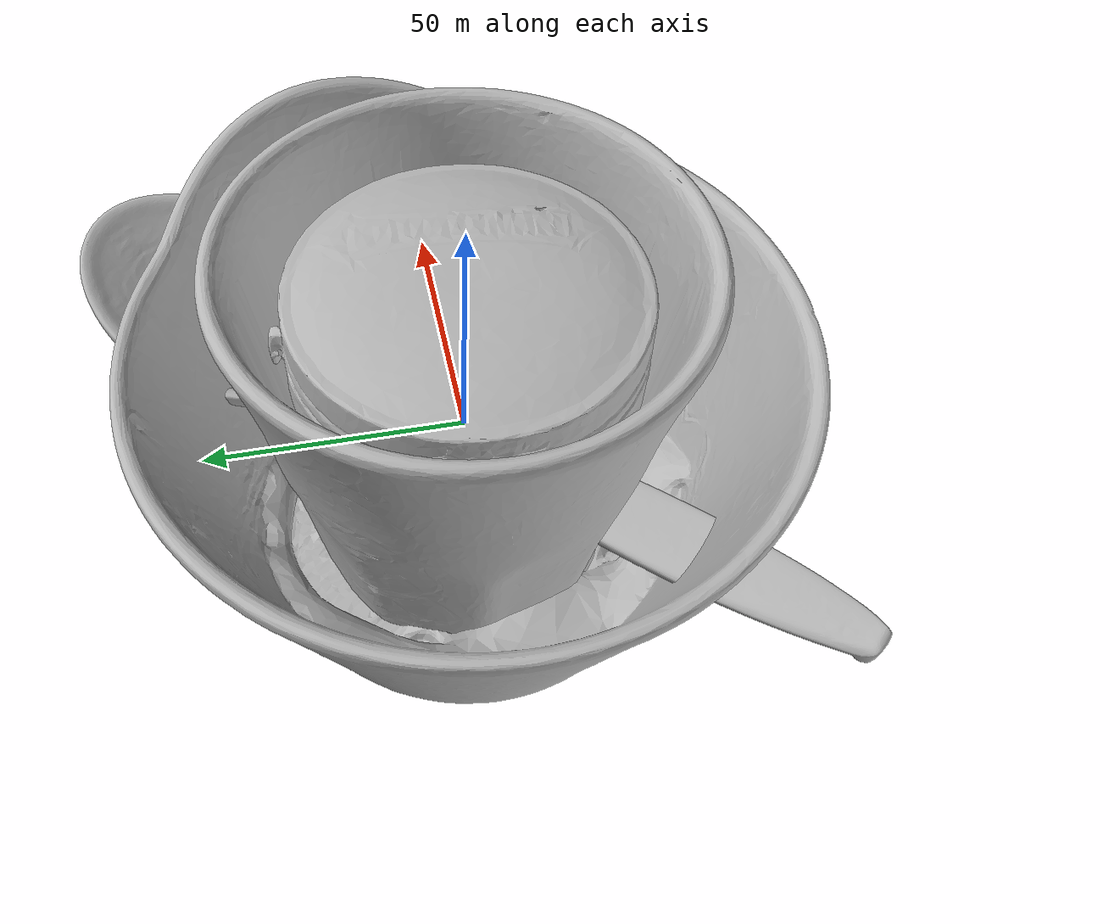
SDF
<sdf version="1.4">
 <world name="default">
  <light name="light1" type="point">
   <pose>0 0 1 0 0 0</pose>
   <diffuse>3 3 3 1</diffuse>
   <specular>3 3 3 1</specular>
  </light>
  <light name="light2" type="point">
   <pose>0 0.5 2 0 0 0</pose>
   <diffuse>1 1 1 1</diffuse>
   <specular>1 1 1 1</specular>
  </light>
  <light name="light3" type="point">
   <pose>0 0.5 2 0 0 0</pose>
   <diffuse>3 3 3 1</diffuse>
   <specular>3 3 3 1</specular>
  </light>
  <scene><ambient>0.7 0.7 0.7</ambient></scene>
  <model name="bottle1">
   <link name="link_bottle1">
    <collision name="default">
     <geometry>
      <mesh><uri>model://green_arrow/collision_meshes/collision.obj</uri><scale>1.0 1.0 1.0</scale></mesh>
     </geometry>
     <surface>
      <friction><ode><mu>0.5</mu><mu2>0.5</mu2></ode></friction>
      <contact><ode><max_vel>0</max_vel><min_depth>0.0001</min_depth><kp>1e8</kp></ode></contact>
     </surface>
    </collision>
    <visual name="default">
     <geometry>
      <mesh><uri>model://green_arrow/visual_meshes/visual.dae</uri><scale>1.0 1.0 1.0</scale></mesh>
     </geometry>
    </visual>
    <inertial>
     <mass>0.2764224410057068</mass>
     <pose>0.0005358477937988937 -0.0008270691032521427 0.002210969105362892 -0.06332196008274972 0.012988210902137025 0.674142157837799</pose>
     <inertia>
      <ixx>0.00020051825</ixx>
      <iyy>0.00020021446</iyy>
      <izz>0.00012947427</izz>
      <ixy>0</ixy>
      <ixz>0</ixz>
      <iyz>0</iyz>
     </inertia>
    </inertial>
   </link>
   <pose>0.18544910848140717 -0.35858434438705444 0.03896166384220123 0.04528463364693023 0.024256758703585752 0.8071424185325202</pose>
  </model>
  <model name="bottle2">
   <link name="link_bottle2">
    <collision name="default">
     <geometry>
      <mesh><uri>model://pure_zhen/collision_meshes/collision.obj</uri><scale>1.0 1.0 1.0</scale></mesh>
     </geometry>
     <surface>
      <friction><ode><mu>0.5</mu><mu2>0.5</mu2></ode></friction>
      <contact><ode><max_vel>0</max_vel><min_depth>0.0001</min_depth><kp>1e8</kp></ode></contact>
     </surface>
    </collision>
    <visual name="default">
     <geometry>
      <mesh><uri>model://pure_zhen/visual_meshes/visual.dae</uri><scale>1.0 1.0 1.0</scale></mesh>
     </geometry>
    </visual>
    <inertial>
     <mass>0.2372884750366211</mass>
     <pose>-8.582299778936431e-05 0.0002452346670906991 -0.0015797418309375644 -0.027641670524606855 0.005623077019143168 0.30585846122319743</pose>
     <inertia>
      <ixx>0.0007112664</ixx>
      <iyy>0.00071145216</iyy>
      <izz>7.51383e-05</izz>
      <ixy>0</ixy>
      <ixz>0</ixz>
      <iyz>0</iyz>
     </inertia>
    </inertial>
   </link>
   <pose>0.1915309876203537 -0.2048015147447586 0.09194844216108322 0.019489087381227174 -0.01608904268505911 -0.9108509703567038</pose>
  </model>
  <model name="silverware1">
   <link name="link_silverware1">
    <collision name="default">
     <geometry>
      <mesh><uri>model://doraemon_spoon/collision_meshes/collision.obj</uri><scale>1.0 1.0 1.0</scale></mesh>
     </geometry>
     <surface>
      <friction><ode><mu>0.5</mu><mu2>0.5</mu2></ode></friction>
      <contact><ode><max_vel>0</max_vel><min_depth>0.0001</min_depth><kp>1e8</kp></ode></contact>
     </surface>
    </collision>
    <visual name="default">
     <geometry>
      <mesh><uri>model://doraemon_spoon/visual_meshes/visual.dae</uri><scale>1.0 1.0 1.0</scale></mesh>
     </geometry>
    </visual>
    <inertial>
     <mass>0.020818473771214485</mass>
     <pose>-0.022165074944496155 -0.0006374582881107926 -0.0033325462136417627 -0.009147017253597407 0.0738041759980984 -0.014123826591698564</pose>
     <inertia>
      <ixx>1.6307007e-06</ixx>
      <iyy>4.631433e-05</iyy>
      <izz>4.7101734e-05</izz>
      <ixy>0</ixy>
      <ixz>0</ixz>
      <iyz>0</iyz>
     </inertia>
    </inertial>
   </link>
   <pose>0.16831456124782562 -0.13877597451210022 0.014739260077476501 0.278827916478983 -0.01033212681306067 -2.2815672004330394</pose>
  </model>
  <model name="stationery1">
   <link name="link_stationery1">
    <collision name="default">
     <geometry>
      <mesh><uri>model://correction_fuid/collision_meshes/collision.obj</uri><scale>1.0 1.0 1.0</scale></mesh>
     </geometry>
     <surface>
      <friction><ode><mu>0.5</mu><mu2>0.5</mu2></ode></friction>
      <contact><ode><max_vel>0</max_vel><min_depth>0.0001</min_depth><kp>1e8</kp></ode></contact>
     </surface>
    </collision>
    <visual name="default">
     <geometry>
      <mesh><uri>model://correction_fuid/visual_meshes/visual.dae</uri><scale>1.0 1.0 1.0</scale></mesh>
     </geometry>
    </visual>
    <inertial>
     <mass>0.03337494283914566</mass>
     <pose>-0.00012557735317386687 -0.0009722886024974287 -0.001618212671019137 -0.010846603423614418 0.019488389217657873 -0.01599245375892703</pose>
     <inertia>
      <ixx>3.2324202e-05</ixx>
      <iyy>1.9563013e-06</iyy>
      <izz>3.3165503e-05</izz>
      <ixy>0</ixy>
      <ixz>0</ixz>
      <iyz>0</iyz>
     </inertia>
    </inertial>
   </link>
   <pose>0.06968817114830017 -0.19002491235733032 0.009632829576730728 -0.0017271966801643078 -0.056166981115242216 -0.13920220767438463</pose>
  </model>
  <model name="bowl1">
   <link name="link_bowl1">
    <collision name="default">
     <geometry>
      <mesh><uri>model://hello_kitty_bowl/collision_meshes/collision.obj</uri><scale>1.0 1.0 1.0</scale></mesh>
     </geometry>
     <surface>
      <friction><ode><mu>0.5</mu><mu2>0.5</mu2></ode></friction>
      <contact><ode><max_vel>0</max_vel><min_depth>0.0001</min_depth><kp>1e8</kp></ode></contact>
     </surface>
    </collision>
    <visual name="default">
     <geometry>
      <mesh><uri>model://hello_kitty_bowl/visual_meshes/visual.dae</uri><scale>1.0 1.0 1.0</scale></mesh>
     </geometry>
    </visual>
    <inertial>
     <mass>0.11590971797704697</mass>
     <pose>-0.0015402117278426886 0.0004577837826218456 -0.0080512510612607 0.004152729053700843 -0.12227221811834889 0.04345084117661168</pose>
     <inertia>
      <ixx>0.00017210246</ixx>
      <iyy>0.00018182951</iyy>
      <izz>0.00025734986</izz>
      <ixy>0</ixy>
      <ixz>0</ixz>
      <iyz>0</iyz>
     </inertia>
    </inertial>
   </link>
   <pose>0.17642800509929657 0.18526622653007507 0.037413522601127625 0.00010290712446007805 8.169470331148141e-05 0.24867480739562955</pose>
  </model>
  <model name="cup1">
   <link name="link_cup1">
    <collision name="default">
     <geometry>
      <mesh><uri>model://hello_kitty_cup/collision_meshes/collision.obj</uri><scale>1.0 1.0 1.0</scale></mesh>
     </geometry>
     <surface>
      <friction><ode><mu>0.5</mu><mu2>0.5</mu2></ode></friction>
      <contact><ode><max_vel>0</max_vel><min_depth>0.0001</min_depth><kp>1e8</kp></ode></contact>
     </surface>
    </collision>
    <visual name="default">
     <geometry>
      <mesh><uri>model://hello_kitty_cup/visual_meshes/visual.dae</uri><scale>1.0 1.0 1.0</scale></mesh>
     </geometry>
    </visual>
    <inertial>
     <mass>0.06483803689479828</mass>
     <pose>0.00027251249412074685 0.0002795030304696411 0.003044978016987443 0.05779149237921037 0.007964744961503711 -0.020451485374324563</pose>
     <inertia>
      <ixx>8.928983e-05</ixx>
      <iyy>9.0285175e-05</iyy>
      <izz>7.52867e-05</izz>
      <ixy>0</ixy>
      <ixz>0</ixz>
      <iyz>0</iyz>
     </inertia>
    </inertial>
   </link>
   <pose>-0.019949711859226227 0.059375159442424774 0.04633193463087082 -0.0010108141082348493 0.00193267710121132 -0.1405214679389603</pose>
  </model>
  <model name="plate1">
   <link name="link_plate1">
    <collision name="default">
     <geometry>
      <mesh><uri>model://hello_kitty_plate/collision_meshes/collision.obj</uri><scale>1.0 1.0 1.0</scale></mesh>
     </geometry>
     <surface>
      <friction><ode><mu>0.5</mu><mu2>0.5</mu2></ode></friction>
      <contact><ode><max_vel>0</max_vel><min_depth>0.0001</min_depth><kp>1e8</kp></ode></contact>
     </surface>
    </collision>
    <visual name="default">
     <geometry>
      <mesh><uri>model://hello_kitty_plate/visual_meshes/visual.dae</uri><scale>1.0 1.0 1.0</scale></mesh>
     </geometry>
    </visual>
    <inertial>
     <mass>0.035439908504486084</mass>
     <pose>0.007314295507967472 0.00028937257593497634 -0.0027947179041802883 -0.00010432032854243346 -0.007054443681780748 -0.014449040989024118</pose>
     <inertia>
      <ixx>6.833875e-05</ixx>
      <iyy>0.00012897578</iyy>
      <izz>0.00019583687</izz>
      <ixy>0</ixy>
      <ixz>0</ixz>
      <iyz>0</iyz>
     </inertia>
    </inertial>
   </link>
   <pose>0.007026952691376209 0.2952839434146881 0.008290695957839489 0.00046439680343618163 0.004161642365524727 1.8400062809569553</pose>
  </model>
  <model name="box4">
   <link name="link_box4">
    <collision name="default">
     <geometry>
      <mesh><uri>model://wooden_puzzle1/collision_meshes/collision.obj</uri><scale>1.0 1.0 1.0</scale></mesh>
     </geometry>
     <surface>
      <friction><ode><mu>0.5</mu><mu2>0.5</mu2></ode></friction>
      <contact><ode><max_vel>0</max_vel><min_depth>0.0001</min_depth><kp>1e8</kp></ode></contact>
     </surface>
    </collision>
    <visual name="default">
     <geometry>
      <mesh><uri>model://wooden_puzzle1/visual_meshes/visual.dae</uri><scale>1.0 1.0 1.0</scale></mesh>
     </geometry>
    </visual>
    <inertial>
     <mass>0.022725893184542656</mass>
     <pose>-0.00017350679263472557 7.972260937094688e-05 -9.191554272547364e-05 -0.07784633272711022 -0.26361483493671084 -0.5528696267966513</pose>
     <inertia>
      <ixx>4.2877546e-06</ixx>
      <iyy>4.205213e-06</iyy>
      <izz>4.2553816e-06</izz>
      <ixy>0</ixy>
      <ixz>0</ixz>
      <iyz>0</iyz>
     </inertia>
    </inertial>
   </link>
   <pose>0.09840604662895203 -0.2187996506690979 0.021109992638230324 0.015206113103169609 -0.319412094622759 0.5338028430538695</pose>
  </model>
  <physics type="ode">
   <max_contacts>50</max_contacts>
   <ode>
    <solver><type>quick</type><iters>75</iters></solver>
    <constraints>
     <contact_max_correcting_vel>0</contact_max_correcting_vel>
     <contact_surface_layer>0</contact_surface_layer>
    </constraints>
   </ode>
  </physics>
 </world>
</sdf>
